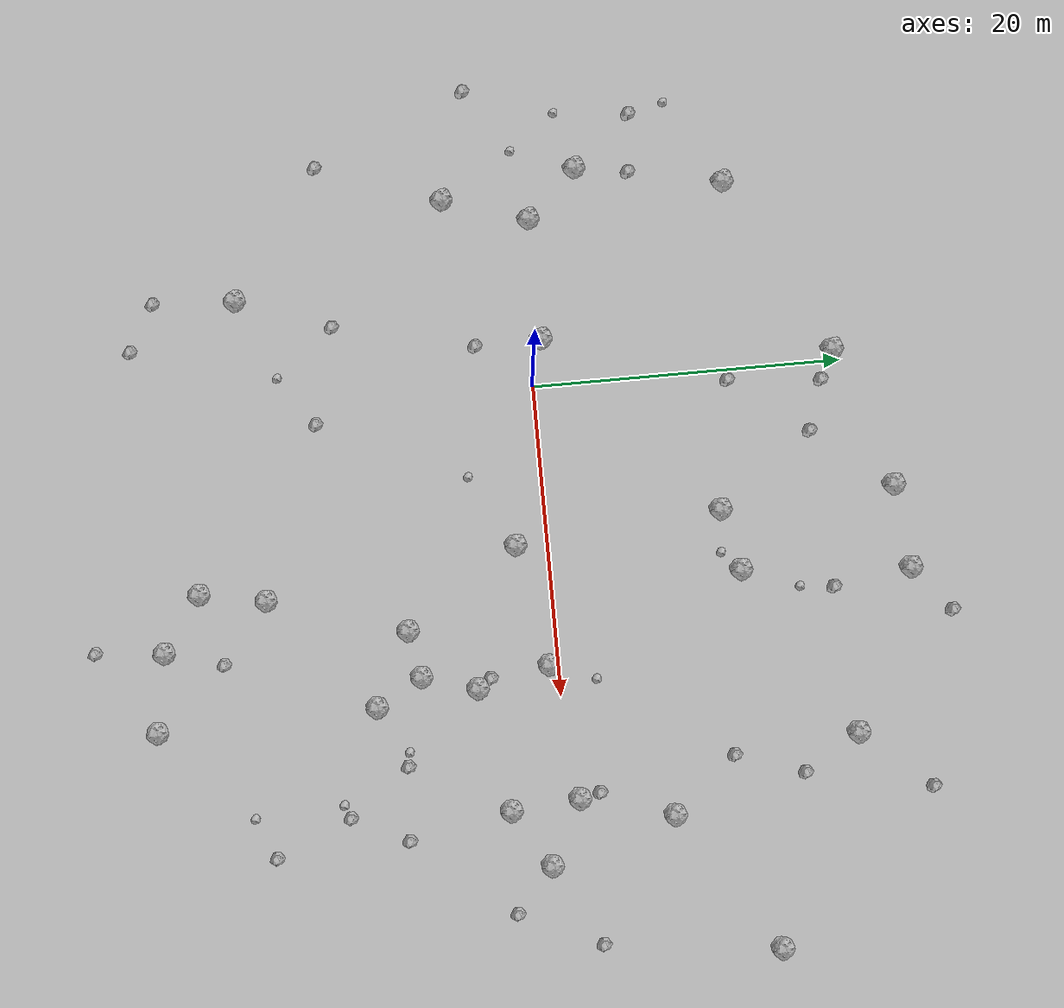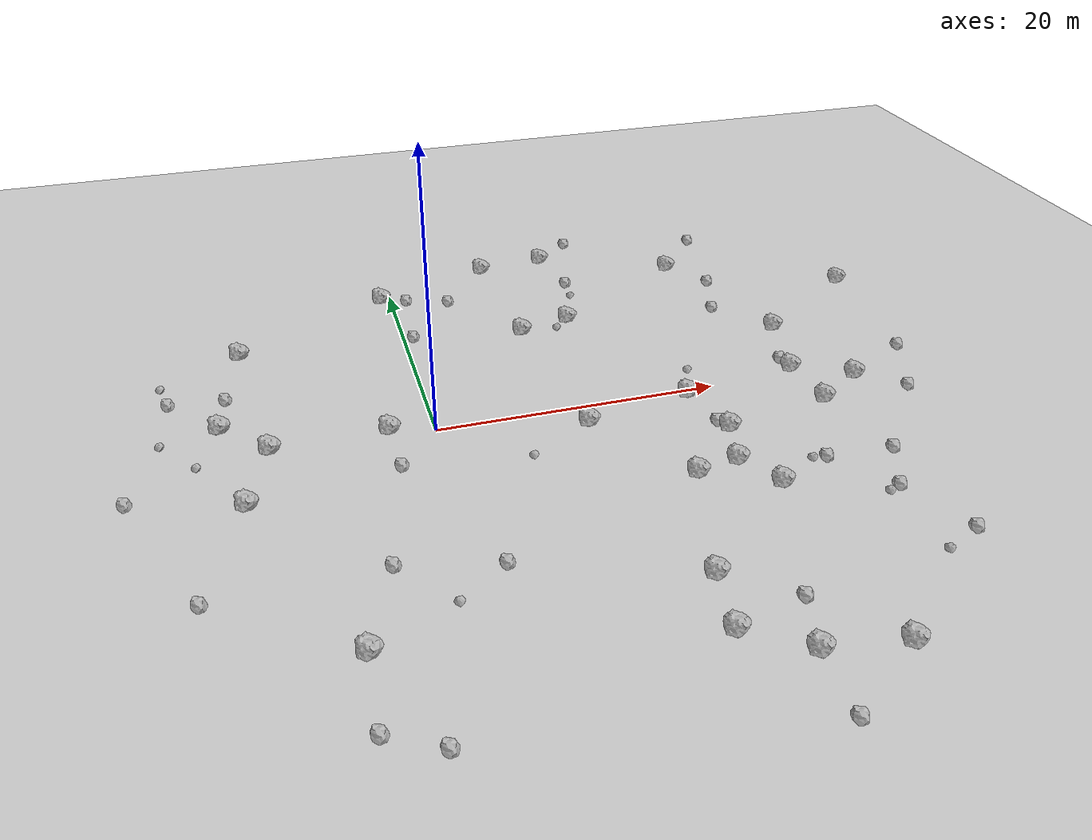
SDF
<sdf version="1.6">
 <world name="default">
  <include><uri>model://custom_ground</uri></include>
  <include><uri>model://sun</uri></include>
  <model name="rock1_0_0">
   <include><uri>model://rock1</uri><pose>19.724716551113964 -11.722472759081889 0.5 0 0 0</pose></include>
  </model>
  <model name="rock1_0_1">
   <include><uri>model://rock1</uri><pose>13.80238084941874 23.100708270481213 0.5 0 0 0</pose></include>
  </model>
  <model name="rock1_0_2">
   <include><uri>model://rock1</uri><pose>26.58502744879698 0.6404993337532687 0.5 0 0 0</pose></include>
  </model>
  <model name="rock1_0_3">
   <include><uri>model://rock1</uri><pose>-12.629926643160683 -4.887122520911504 0.5 0 0 0</pose></include>
  </model>
  <model name="rock1_0_4">
   <include><uri>model://rock1</uri><pose>37.01559315031228 12.534004559642739 0.5 0 0 0</pose></include>
  </model>
  <model name="rock1_0_5">
   <include><uri>model://rock1</uri><pose>26.97317730760927 -3.7521410446310526 0.5 0 0 0</pose></include>
  </model>
  <model name="rock1_0_6">
   <include><uri>model://rock1</uri><pose>17.986171244220095 -0.5519500790536824 0.5 0 0 0</pose></include>
  </model>
  <model name="rock1_0_7">
   <include><uri>model://rock1</uri><pose>-10.904290465323776 0.6423649359624264 0.5 0 0 0</pose></include>
  </model>
  <model name="rock1_0_8">
   <include><uri>model://rock1</uri><pose>10.175523150825388 -2.0274310179414137 0.5 0 0 0</pose></include>
  </model>
  <model name="rock1_0_9">
   <include><uri>model://rock1</uri><pose>28.12491999658954 6.58218707608507 0.5 0 0 0</pose></include>
  </model>
  <model name="rock1_0_10">
   <include><uri>model://rock1</uri><pose>-3.002439164977069 0.7761917120309327 0.5 0 0 0</pose></include>
  </model>
  <model name="rock1_0_11">
   <include><uri>model://rock1</uri><pose>12.321093424580702 -18.24577601203778 0.5 0 0 0</pose></include>
  </model>
  <model name="rock1_0_12">
   <include><uri>model://rock1</uri><pose>19.087551692404368 -5.217226689133895 0.5 0 0 0</pose></include>
  </model>
  <model name="rock1_0_13">
   <include><uri>model://rock1</uri><pose>-12.272127852948193 13.442739897513803 0.5 0 0 0</pose></include>
  </model>
  <model name="rock1_0_14">
   <include><uri>model://rock1</uri><pose>-7.189460325592883 -18.79434283441582 0.5 0 0 0</pose></include>
  </model>
  <model name="rock1_0_15">
   <include><uri>model://rock1</uri><pose>20.099761779133644 -25.77307892692574 0.5 0 0 0</pose></include>
  </model>
  <model name="rock1_0_16">
   <include><uri>model://rock1</uri><pose>8.410495699876947 22.54698822393503 0.5 0 0 0</pose></include>
  </model>
  <model name="rock1_0_17">
   <include><uri>model://rock1</uri><pose>15.097122825017024 -24.978609942481746 0.5 0 0 0</pose></include>
  </model>
  <model name="rock1_0_18">
   <include><uri>model://rock1</uri><pose>-13.991168334492867 3.9080326306544535 0.5 0 0 0</pose></include>
  </model>
  <model name="rock1_0_19">
   <include><uri>model://rock1</uri><pose>-0.6902788335467882 19.466146008242873 0.5 0 0 0</pose></include>
  </model>
  <model name="rock1_0_20">
   <include><uri>model://rock1</uri><pose>15.032908085699418 -9.355245130054811 0.5 0 0 0</pose></include>
  </model>
  <model name="rock1_0_21">
   <include><uri>model://rock1</uri><pose>11.554656458303697 -22.499827983644874 0.5 0 0 0</pose></include>
  </model>
  <model name="rock1_0_22">
   <include><uri>model://rock1</uri><pose>30.629400173062898 -1.473009429403163 0.5 0 0 0</pose></include>
  </model>
  <model name="rock1_0_23">
   <include><uri>model://rock1</uri><pose>9.038047644719278 11.299128465402582 0.5 0 0 0</pose></include>
  </model>
  <model name="rock1_0_24">
   <include><uri>model://rock1</uri><pose>12.999548638222556 12.238604030574777 0.5 0 0 0</pose></include>
  </model>
  <model name="rock1_0_25">
   <include><uri>model://rock1</uri><pose>18.03990549368399 -8.747966425728006 0.5 0 0 0</pose></include>
  </model>
  <model name="rock1_0_26">
   <include><uri>model://rock1</uri><pose>23.95791260916799 18.696225427344977 0.5 0 0 0</pose></include>
  </model>
  <model name="rock2_0_0">
   <include><uri>model://rock2</uri><pose>26.301026490829273 1.9627272071270276 0.3 0 0 0</pose></include>
  </model>
  <model name="rock2_0_1">
   <include><uri>model://rock2</uri><pose>33.45488313099638 -3.908294212939481 0.3 0 0 0</pose></include>
  </model>
  <model name="rock2_0_2">
   <include><uri>model://rock2</uri><pose>28.302674399420333 -10.345115174906812 0.3 0 0 0</pose></include>
  </model>
  <model name="rock2_0_3">
   <include><uri>model://rock2</uri><pose>27.7415016515274 23.169461967081773 0.3 0 0 0</pose></include>
  </model>
  <model name="rock2_0_4">
   <include><uri>model://rock2</uri><pose>1.169118764615714 18.599968832762556 0.3 0 0 0</pose></include>
  </model>
  <model name="rock2_0_5">
   <include><uri>model://rock2</uri><pose>-15.553308857496615 -12.960622856172325 0.3 0 0 0</pose></include>
  </model>
  <model name="rock2_0_6">
   <include><uri>model://rock2</uri><pose>-4.998409538504802 -12.681926908334109 0.3 0 0 0</pose></include>
  </model>
  <model name="rock2_0_7">
   <include><uri>model://rock2</uri><pose>-13.520334856838039 7.406769788547521 0.3 0 0 0</pose></include>
  </model>
  <model name="rock2_0_8">
   <include><uri>model://rock2</uri><pose>4.42183853618052 17.5521301458814 0.3 0 0 0</pose></include>
  </model>
  <model name="rock2_0_9">
   <include><uri>model://rock2</uri><pose>1.2486916762275513 -14.203960429944281 0.3 0 0 0</pose></include>
  </model>
  <model name="rock2_0_10">
   <include><uri>model://rock2</uri><pose>26.174301287115355 15.113511554030296 0.3 0 0 0</pose></include>
  </model>
  <model name="rock2_0_11">
   <include><uri>model://rock2</uri><pose>23.622223157101118 -10.051354726190745 0.3 0 0 0</pose></include>
  </model>
  <model name="rock2_0_12">
   <include><uri>model://rock2</uri><pose>28.66610191070621 -18.822656927766957 0.3 0 0 0</pose></include>
  </model>
  <model name="rock2_0_13">
   <include><uri>model://rock2</uri><pose>14.58091897407597 18.109963846949668 0.3 0 0 0</pose></include>
  </model>
  <model name="rock2_0_14">
   <include><uri>model://rock2</uri><pose>-19.78478106644112 -2.914858331687604 0.3 0 0 0</pose></include>
  </model>
  <model name="rock2_0_15">
   <include><uri>model://rock2</uri><pose>14.731709372355951 -29.425981087128534 0.3 0 0 0</pose></include>
  </model>
  <model name="rock2_0_16">
   <include><uri>model://rock2</uri><pose>35.81638368463736 1.339792630380778 0.3 0 0 0</pose></include>
  </model>
  <model name="rock2_0_17">
   <include><uri>model://rock2</uri><pose>24.688786410707955 10.72215750153078 0.3 0 0 0</pose></include>
  </model>
  <model name="rock2_0_18">
   <include><uri>model://rock2</uri><pose>26.547425532041046 -13.961185421685592 0.3 0 0 0</pose></include>
  </model>
  <model name="rock2_0_19">
   <include><uri>model://rock2</uri><pose>18.483332674303384 -4.3463742899160955 0.3 0 0 0</pose></include>
  </model>
  <model name="rock2_0_20">
   <include><uri>model://rock2</uri><pose>16.702909921323503 25.54073682724647 0.3 0 0 0</pose></include>
  </model>
  <model name="rock2_0_21">
   <include><uri>model://rock2</uri><pose>-2.945133578341082 -3.5155814255109448 0.3 0 0 0</pose></include>
  </model>
  <model name="rock2_0_22">
   <include><uri>model://rock2</uri><pose>0.6793742061384158 12.559907197347101 0.3 0 0 0</pose></include>
  </model>
  <model name="rock2_0_23">
   <include><uri>model://rock2</uri><pose>-4.494583498668618 -25.819064027480586 0.3 0 0 0</pose></include>
  </model>
  <model name="rock2_0_24">
   <include><uri>model://rock2</uri><pose>-7.513935359561367 -24.141178313304408 0.3 0 0 0</pose></include>
  </model>
  <model name="rock2_0_25">
   <include><uri>model://rock2</uri><pose>-17.371746377675276 7.781273792298663 0.3 0 0 0</pose></include>
  </model>
  <model name="rock2_0_26">
   <include><uri>model://rock2</uri><pose>16.16302710849957 -21.250672051021944 0.3 0 0 0</pose></include>
  </model>
  <model name="rock3_0_0">
   <include><uri>model://rock3</uri><pose>-17.94326152378732 10.087504837131632 0.2 0 0 0</pose></include>
  </model>
  <model name="rock3_0_1">
   <include><uri>model://rock3</uri><pose>-15.587303061675348 -0.17645101257475915 0.2 0 0 0</pose></include>
  </model>
  <model name="rock3_0_2">
   <include><uri>model://rock3</uri><pose>11.749961333426185 11.081430395673458 0.2 0 0 0</pose></include>
  </model>
  <model name="rock3_0_3">
   <include><uri>model://rock3</uri><pose>5.490978799131536 -4.729798734566714 0.2 0 0 0</pose></include>
  </model>
  <model name="rock3_0_4">
   <include><uri>model://rock3</uri><pose>19.106507111185955 2.3734307774554537 0.2 0 0 0</pose></include>
  </model>
  <model name="rock3_0_5">
   <include><uri>model://rock3</uri><pose>26.04221444350034 -20.056065960336227 0.2 0 0 0</pose></include>
  </model>
  <model name="rock3_0_6">
   <include><uri>model://rock3</uri><pose>25.67755184188404 -14.355827893596375 0.2 0 0 0</pose></include>
  </model>
  <model name="rock3_0_7">
   <include><uri>model://rock3</uri><pose>-1.991714784959953 -16.509891211213542 0.2 0 0 0</pose></include>
  </model>
  <model name="rock3_0_8">
   <include><uri>model://rock3</uri><pose>22.71470239489716 -9.934074388015507 0.2 0 0 0</pose></include>
  </model>
  <model name="rock3_0_9">
   <include><uri>model://rock3</uri><pose>-17.880163365229897 2.8655490783155884 0.2 0 0 0</pose></include>
  </model>
  <model name="rock3_0_10">
   <include><uri>model://rock3</uri><pose>14.357544148215602 15.909430100581076 0.2 0 0 0</pose></include>
  </model>
 </world>
</sdf>
